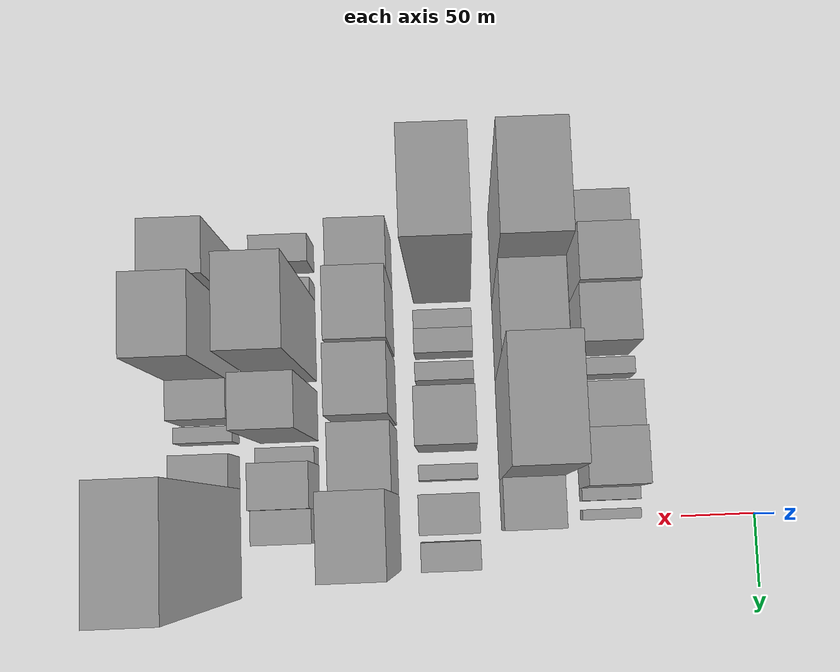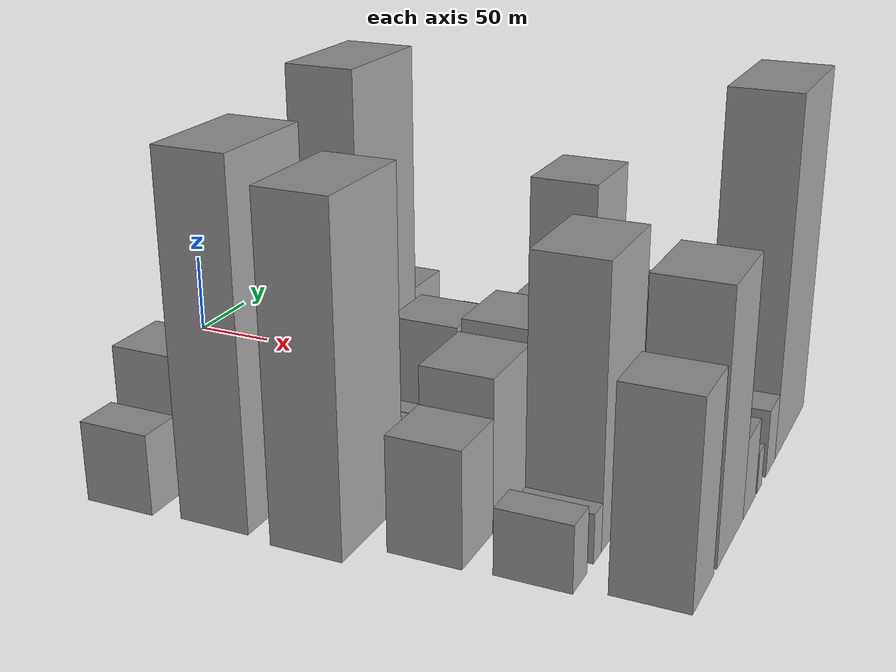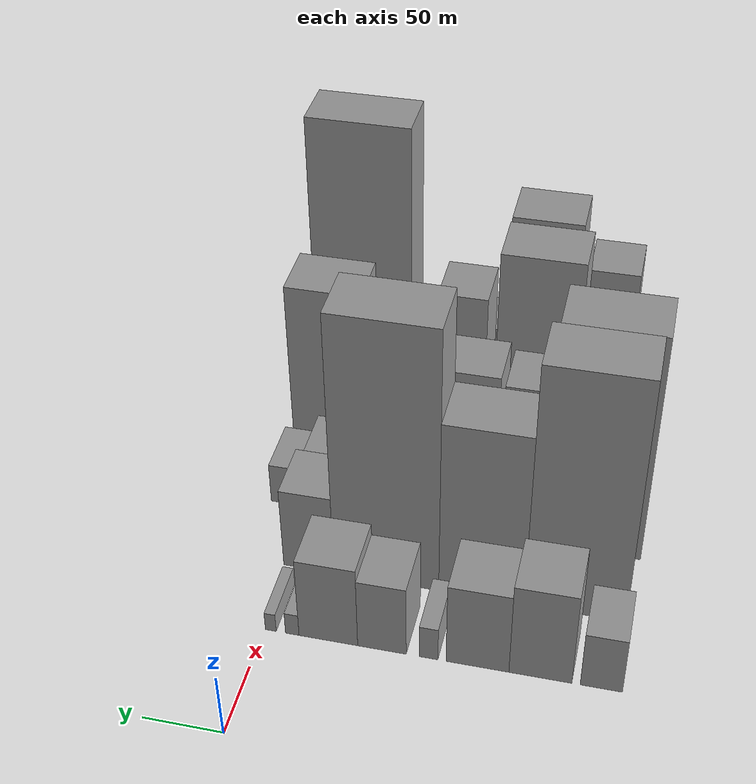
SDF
<sdf version="1.6">
 <world name="default">
  <model name="building_16">
   <static>1</static>
   <pose>100.0000 -209.2729 0 0.000000 0.000000 0.000000</pose>
   <link name="link">
    <pose>0 0 22.50 0 0 0</pose>
    <collision name="collision"><geometry><box><size>40.0000 25.2728 45.0000</size></box></geometry></collision>
    <visual name="visual">
     <cast_shadows>0</cast_shadows>
     <geometry><box><size>40.0000 25.2728 45.0000</size></box></geometry>
     <material>
      <script>
       <uri>model://grey_wall/materials/scripts</uri>
       <uri>model://grey_wall/materials/textures</uri>
       <name>vrc/grey_wall</name>
      </script>
     </material>
    </visual>
   </link>
  </model>
  <model name="building_17">
   <static>1</static>
   <pose>100.0000 -172.5499 0 0.000000 0.000000 0.000000</pose>
   <link name="link">
    <pose>0 0 37.50 0 0 0</pose>
    <collision name="collision"><geometry><box><size>40.0000 38.1732 75.0000</size></box></geometry></collision>
    <visual name="visual">
     <cast_shadows>0</cast_shadows>
     <geometry><box><size>40.0000 38.1732 75.0000</size></box></geometry>
     <material>
      <script>
       <uri>model://grey_wall/materials/scripts</uri>
       <uri>model://grey_wall/materials/textures</uri>
       <name>vrc/grey_wall</name>
      </script>
     </material>
    </visual>
   </link>
  </model>
  <model name="building_18">
   <static>1</static>
   <pose>100.0000 -134.1330 0 0.000000 0.000000 0.000000</pose>
   <link name="link">
    <pose>0 0 33.00 0 0 0</pose>
    <collision name="collision"><geometry><box><size>40.0000 38.6607 66.0000</size></box></geometry></collision>
    <visual name="visual">
     <cast_shadows>0</cast_shadows>
     <geometry><box><size>40.0000 38.6607 66.0000</size></box></geometry>
     <material>
      <script>
       <uri>model://grey_wall/materials/scripts</uri>
       <uri>model://grey_wall/materials/textures</uri>
       <name>vrc/grey_wall</name>
      </script>
     </material>
    </visual>
   </link>
  </model>
  <model name="building_19">
   <static>1</static>
   <pose>100.0000 -103.9196 0 0.000000 0.000000 0.000000</pose>
   <link name="link">
    <pose>0 0 13.50 0 0 0</pose>
    <collision name="collision"><geometry><box><size>40.0000 11.7662 27.0000</size></box></geometry></collision>
    <visual name="visual">
     <cast_shadows>0</cast_shadows>
     <geometry><box><size>40.0000 11.7662 27.0000</size></box></geometry>
     <material>
      <script>
       <uri>model://grey_wall/materials/scripts</uri>
       <uri>model://grey_wall/materials/textures</uri>
       <name>vrc/grey_wall</name>
      </script>
     </material>
    </visual>
   </link>
  </model>
  <model name="building_20">
   <static>1</static>
   <pose>100.0000 -74.7390 0 0.000000 0.000000 0.000000</pose>
   <link name="link">
    <pose>0 0 28.50 0 0 0</pose>
    <collision name="collision"><geometry><box><size>40.0000 30.5950 57.0000</size></box></geometry></collision>
    <visual name="visual">
     <cast_shadows>0</cast_shadows>
     <geometry><box><size>40.0000 30.5950 57.0000</size></box></geometry>
     <material>
      <script>
       <uri>model://grey_wall/materials/scripts</uri>
       <uri>model://grey_wall/materials/textures</uri>
       <name>vrc/grey_wall</name>
      </script>
     </material>
    </visual>
   </link>
  </model>
  <model name="building_21">
   <static>1</static>
   <pose>100.0000 -40.7443 0 0.000000 0.000000 0.000000</pose>
   <link name="link">
    <pose>0 0 33.00 0 0 0</pose>
    <collision name="collision"><geometry><box><size>40.0000 37.3942 66.0000</size></box></geometry></collision>
    <visual name="visual">
     <cast_shadows>0</cast_shadows>
     <geometry><box><size>40.0000 37.3942 66.0000</size></box></geometry>
     <material>
      <script>
       <uri>model://grey_wall/materials/scripts</uri>
       <uri>model://grey_wall/materials/textures</uri>
       <name>vrc/grey_wall</name>
      </script>
     </material>
    </visual>
   </link>
  </model>
  <model name="building_22">
   <static>1</static>
   <pose>100.0000 -17.7094 0 0.000000 0.000000 0.000000</pose>
   <link name="link">
    <pose>0 0 9.00 0 0 0</pose>
    <collision name="collision"><geometry><box><size>40.0000 8.6757 18.0000</size></box></geometry></collision>
    <visual name="visual">
     <cast_shadows>0</cast_shadows>
     <geometry><box><size>40.0000 8.6757 18.0000</size></box></geometry>
     <material>
      <script>
       <uri>model://grey_wall/materials/scripts</uri>
       <uri>model://grey_wall/materials/textures</uri>
       <name>vrc/grey_wall</name>
      </script>
     </material>
    </visual>
   </link>
  </model>
  <model name="building_23">
   <static>1</static>
   <pose>100.0000 -3.8777 0 0.000000 0.000000 0.000000</pose>
   <link name="link">
    <pose>0 0 7.50 0 0 0</pose>
    <collision name="collision"><geometry><box><size>40.0000 6.9877 15.0000</size></box></geometry></collision>
    <visual name="visual">
     <cast_shadows>0</cast_shadows>
     <geometry><box><size>40.0000 6.9877 15.0000</size></box></geometry>
     <material>
      <script>
       <uri>model://grey_wall/materials/scripts</uri>
       <uri>model://grey_wall/materials/textures</uri>
       <name>vrc/grey_wall</name>
      </script>
     </material>
    </visual>
   </link>
  </model>
  <model name="building_70">
   <static>1</static>
   <pose>155.0000 -186.0356 0 0.000000 0.000000 0.000000</pose>
   <link name="link">
    <pose>0 0 97.50 0 0 0</pose>
    <collision name="collision"><geometry><box><size>40.0000 64.4252 195.0000</size></box></geometry></collision>
    <visual name="visual">
     <cast_shadows>0</cast_shadows>
     <geometry><box><size>40.0000 64.4252 195.0000</size></box></geometry>
     <material>
      <script>
       <uri>model://grey_wall/materials/scripts</uri>
       <uri>model://grey_wall/materials/textures</uri>
       <name>vrc/grey_wall</name>
      </script>
     </material>
    </visual>
   </link>
  </model>
  <model name="building_71">
   <static>1</static>
   <pose>155.0000 -126.2887 0 0.000000 0.000000 0.000000</pose>
   <link name="link">
    <pose>0 0 70.50 0 0 0</pose>
    <collision name="collision"><geometry><box><size>40.0000 55.0686 141.0000</size></box></geometry></collision>
    <visual name="visual">
     <cast_shadows>0</cast_shadows>
     <geometry><box><size>40.0000 55.0686 141.0000</size></box></geometry>
     <material>
      <script>
       <uri>model://grey_wall/materials/scripts</uri>
       <uri>model://grey_wall/materials/textures</uri>
       <name>vrc/grey_wall</name>
      </script>
     </material>
    </visual>
   </link>
  </model>
  <model name="building_72">
   <static>1</static>
   <pose>155.0000 -64.1300 0 0.000000 0.000000 0.000000</pose>
   <link name="link">
    <pose>0 0 105.00 0 0 0</pose>
    <collision name="collision"><geometry><box><size>40.0000 69.2488 210.0000</size></box></geometry></collision>
    <visual name="visual">
     <cast_shadows>0</cast_shadows>
     <geometry><box><size>40.0000 69.2488 210.0000</size></box></geometry>
     <material>
      <script>
       <uri>model://grey_wall/materials/scripts</uri>
       <uri>model://grey_wall/materials/textures</uri>
       <name>vrc/grey_wall</name>
      </script>
     </material>
    </visual>
   </link>
  </model>
  <model name="building_73">
   <static>1</static>
   <pose>155.0000 -12.7014 0 0.000000 0.000000 0.000000</pose>
   <link name="link">
    <pose>0 0 33.00 0 0 0</pose>
    <collision name="collision"><geometry><box><size>40.0000 33.6084 66.0000</size></box></geometry></collision>
    <visual name="visual">
     <cast_shadows>0</cast_shadows>
     <geometry><box><size>40.0000 33.6084 66.0000</size></box></geometry>
     <material>
      <script>
       <uri>model://grey_wall/materials/scripts</uri>
       <uri>model://grey_wall/materials/textures</uri>
       <name>vrc/grey_wall</name>
      </script>
     </material>
    </visual>
   </link>
  </model>
  <model name="building_120">
   <static>1</static>
   <pose>210.0000 -189.6673 0 0.000000 0.000000 0.000000</pose>
   <link name="link">
    <pose>0 0 91.50 0 0 0</pose>
    <collision name="collision"><geometry><box><size>40.0000 64.3892 183.0000</size></box></geometry></collision>
    <visual name="visual">
     <cast_shadows>0</cast_shadows>
     <geometry><box><size>40.0000 64.3892 183.0000</size></box></geometry>
     <material>
      <script>
       <uri>model://grey_wall/materials/scripts</uri>
       <uri>model://grey_wall/materials/textures</uri>
       <name>vrc/grey_wall</name>
      </script>
     </material>
    </visual>
   </link>
  </model>
  <model name="building_121">
   <static>1</static>
   <pose>210.0000 -140.7694 0 0.000000 0.000000 0.000000</pose>
   <link name="link">
    <pose>0 0 13.50 0 0 0</pose>
    <collision name="collision"><geometry><box><size>40.0000 13.4068 27.0000</size></box></geometry></collision>
    <visual name="visual">
     <cast_shadows>0</cast_shadows>
     <geometry><box><size>40.0000 13.4068 27.0000</size></box></geometry>
     <material>
      <script>
       <uri>model://grey_wall/materials/scripts</uri>
       <uri>model://grey_wall/materials/textures</uri>
       <name>vrc/grey_wall</name>
      </script>
     </material>
    </visual>
   </link>
  </model>
  <model name="building_122">
   <static>1</static>
   <pose>210.0000 -125.6871 0 0.000000 0.000000 0.000000</pose>
   <link name="link">
    <pose>0 0 15.00 0 0 0</pose>
    <collision name="collision"><geometry><box><size>40.0000 16.7577 30.0000</size></box></geometry></collision>
    <visual name="visual">
     <cast_shadows>0</cast_shadows>
     <geometry><box><size>40.0000 16.7577 30.0000</size></box></geometry>
     <material>
      <script>
       <uri>model://grey_wall/materials/scripts</uri>
       <uri>model://grey_wall/materials/textures</uri>
       <name>vrc/grey_wall</name>
      </script>
     </material>
    </visual>
   </link>
  </model>
  <model name="building_123">
   <static>1</static>
   <pose>210.0000 -105.0170 0 0.000000 0.000000 0.000000</pose>
   <link name="link">
    <pose>0 0 13.50 0 0 0</pose>
    <collision name="collision"><geometry><box><size>40.0000 12.5826 27.0000</size></box></geometry></collision>
    <visual name="visual">
     <cast_shadows>0</cast_shadows>
     <geometry><box><size>40.0000 12.5826 27.0000</size></box></geometry>
     <material>
      <script>
       <uri>model://grey_wall/materials/scripts</uri>
       <uri>model://grey_wall/materials/textures</uri>
       <name>vrc/grey_wall</name>
      </script>
     </material>
    </visual>
   </link>
  </model>
  <model name="building_124">
   <static>1</static>
   <pose>210.0000 -70.7003 0 0.000000 0.000000 0.000000</pose>
   <link name="link">
    <pose>0 0 36.00 0 0 0</pose>
    <collision name="collision"><geometry><box><size>40.0000 38.0507 72.0000</size></box></geometry></collision>
    <visual name="visual">
     <cast_shadows>0</cast_shadows>
     <geometry><box><size>40.0000 38.0507 72.0000</size></box></geometry>
     <material>
      <script>
       <uri>model://grey_wall/materials/scripts</uri>
       <uri>model://grey_wall/materials/textures</uri>
       <name>vrc/grey_wall</name>
      </script>
     </material>
    </visual>
   </link>
  </model>
  <model name="building_125">
   <static>1</static>
   <pose>210.0000 -36.4760 0 0.000000 0.000000 0.000000</pose>
   <link name="link">
    <pose>0 0 12.00 0 0 0</pose>
    <collision name="collision"><geometry><box><size>40.0000 10.3979 24.0000</size></box></geometry></collision>
    <visual name="visual">
     <cast_shadows>0</cast_shadows>
     <geometry><box><size>40.0000 10.3979 24.0000</size></box></geometry>
     <material>
      <script>
       <uri>model://grey_wall/materials/scripts</uri>
       <uri>model://grey_wall/materials/textures</uri>
       <name>vrc/grey_wall</name>
      </script>
     </material>
    </visual>
   </link>
  </model>
  <model name="building_126">
   <static>1</static>
   <pose>210.0000 -8.0788 0 0.000000 0.000000 0.000000</pose>
   <link name="link">
    <pose>0 0 24.00 0 0 0</pose>
    <collision name="collision"><geometry><box><size>40.0000 26.3965 48.0000</size></box></geometry></collision>
    <visual name="visual">
     <cast_shadows>0</cast_shadows>
     <geometry><box><size>40.0000 26.3965 48.0000</size></box></geometry>
     <material>
      <script>
       <uri>model://grey_wall/materials/scripts</uri>
       <uri>model://grey_wall/materials/textures</uri>
       <name>vrc/grey_wall</name>
      </script>
     </material>
    </visual>
   </link>
  </model>
  <model name="building_127">
   <static>1</static>
   <pose>210.0000 19.7451 0 0.000000 0.000000 0.000000</pose>
   <link name="link">
    <pose>0 0 16.50 0 0 0</pose>
    <collision name="collision"><geometry><box><size>40.0000 19.2513 33.0000</size></box></geometry></collision>
    <visual name="visual">
     <cast_shadows>0</cast_shadows>
     <geometry><box><size>40.0000 19.2513 33.0000</size></box></geometry>
     <material>
      <script>
       <uri>model://grey_wall/materials/scripts</uri>
       <uri>model://grey_wall/materials/textures</uri>
       <name>vrc/grey_wall</name>
      </script>
     </material>
    </visual>
   </link>
  </model>
  <model name="building_174">
   <static>1</static>
   <pose>265.0000 -185.7360 0 0.000000 0.000000 0.000000</pose>
   <link name="link">
    <pose>0 0 31.50 0 0 0</pose>
    <collision name="collision"><geometry><box><size>40.0000 36.9029 63.0000</size></box></geometry></collision>
    <visual name="visual">
     <cast_shadows>0</cast_shadows>
     <geometry><box><size>40.0000 36.9029 63.0000</size></box></geometry>
     <material>
      <script>
       <uri>model://grey_wall/materials/scripts</uri>
       <uri>model://grey_wall/materials/textures</uri>
       <name>vrc/grey_wall</name>
      </script>
     </material>
    </visual>
   </link>
  </model>
  <model name="building_175">
   <static>1</static>
   <pose>265.0000 -143.5590 0 0.000000 0.000000 0.000000</pose>
   <link name="link">
    <pose>0 0 42.00 0 0 0</pose>
    <collision name="collision"><geometry><box><size>40.0000 47.4509 84.0000</size></box></geometry></collision>
    <visual name="visual">
     <cast_shadows>0</cast_shadows>
     <geometry><box><size>40.0000 47.4509 84.0000</size></box></geometry>
     <material>
      <script>
       <uri>model://grey_wall/materials/scripts</uri>
       <uri>model://grey_wall/materials/textures</uri>
       <name>vrc/grey_wall</name>
      </script>
     </material>
    </visual>
   </link>
  </model>
  <model name="building_176">
   <static>1</static>
   <pose>265.0000 -94.0019 0 0.000000 0.000000 0.000000</pose>
   <link name="link">
    <pose>0 0 45.00 0 0 0</pose>
    <collision name="collision"><geometry><box><size>40.0000 45.6634 90.0000</size></box></geometry></collision>
    <visual name="visual">
     <cast_shadows>0</cast_shadows>
     <geometry><box><size>40.0000 45.6634 90.0000</size></box></geometry>
     <material>
      <script>
       <uri>model://grey_wall/materials/scripts</uri>
       <uri>model://grey_wall/materials/textures</uri>
       <name>vrc/grey_wall</name>
      </script>
     </material>
    </visual>
   </link>
  </model>
  <model name="building_177">
   <static>1</static>
   <pose>265.0000 -45.6022 0 0.000000 0.000000 0.000000</pose>
   <link name="link">
    <pose>0 0 39.00 0 0 0</pose>
    <collision name="collision"><geometry><box><size>40.0000 45.1358 78.0000</size></box></geometry></collision>
    <visual name="visual">
     <cast_shadows>0</cast_shadows>
     <geometry><box><size>40.0000 45.1358 78.0000</size></box></geometry>
     <material>
      <script>
       <uri>model://grey_wall/materials/scripts</uri>
       <uri>model://grey_wall/materials/textures</uri>
       <name>vrc/grey_wall</name>
      </script>
     </material>
    </visual>
   </link>
  </model>
  <model name="building_178">
   <static>1</static>
   <pose>265.0000 2.9374 0 0.000000 0.000000 0.000000</pose>
   <link name="link">
    <pose>0 0 70.50 0 0 0</pose>
    <collision name="collision"><geometry><box><size>40.0000 51.9434 141.0000</size></box></geometry></collision>
    <visual name="visual">
     <cast_shadows>0</cast_shadows>
     <geometry><box><size>40.0000 51.9434 141.0000</size></box></geometry>
     <material>
      <script>
       <uri>model://grey_wall/materials/scripts</uri>
       <uri>model://grey_wall/materials/textures</uri>
       <name>vrc/grey_wall</name>
      </script>
     </material>
    </visual>
   </link>
  </model>
  <model name="building_227">
   <static>1</static>
   <pose>320.0000 -192.3097 0 0.000000 0.000000 0.000000</pose>
   <link name="link">
    <pose>0 0 18.00 0 0 0</pose>
    <collision name="collision"><geometry><box><size>40.0000 19.4289 36.0000</size></box></geometry></collision>
    <visual name="visual">
     <cast_shadows>0</cast_shadows>
     <geometry><box><size>40.0000 19.4289 36.0000</size></box></geometry>
     <material>
      <script>
       <uri>model://grey_wall/materials/scripts</uri>
       <uri>model://grey_wall/materials/textures</uri>
       <name>vrc/grey_wall</name>
      </script>
     </material>
    </visual>
   </link>
  </model>
  <model name="building_228">
   <static>1</static>
   <pose>320.0000 -167.9087 0 0.000000 0.000000 0.000000</pose>
   <link name="link">
    <pose>0 0 13.50 0 0 0</pose>
    <collision name="collision"><geometry><box><size>40.0000 11.3732 27.0000</size></box></geometry></collision>
    <visual name="visual">
     <cast_shadows>0</cast_shadows>
     <geometry><box><size>40.0000 11.3732 27.0000</size></box></geometry>
     <material>
      <script>
       <uri>model://grey_wall/materials/scripts</uri>
       <uri>model://grey_wall/materials/textures</uri>
       <name>vrc/grey_wall</name>
      </script>
     </material>
    </visual>
   </link>
  </model>
  <model name="building_229">
   <static>1</static>
   <pose>320.0000 -133.3621 0 0.000000 0.000000 0.000000</pose>
   <link name="link">
    <pose>0 0 75.00 0 0 0</pose>
    <collision name="collision"><geometry><box><size>40.0000 57.7199 150.0000</size></box></geometry></collision>
    <visual name="visual">
     <cast_shadows>0</cast_shadows>
     <geometry><box><size>40.0000 57.7199 150.0000</size></box></geometry>
     <material>
      <script>
       <uri>model://grey_wall/materials/scripts</uri>
       <uri>model://grey_wall/materials/textures</uri>
       <name>vrc/grey_wall</name>
      </script>
     </material>
    </visual>
   </link>
  </model>
  <model name="building_230">
   <static>1</static>
   <pose>320.0000 -80.0571 0 0.000000 0.000000 0.000000</pose>
   <link name="link">
    <pose>0 0 55.50 0 0 0</pose>
    <collision name="collision"><geometry><box><size>40.0000 34.8900 111.0000</size></box></geometry></collision>
    <visual name="visual">
     <cast_shadows>0</cast_shadows>
     <geometry><box><size>40.0000 34.8900 111.0000</size></box></geometry>
     <material>
      <script>
       <uri>model://grey_wall/materials/scripts</uri>
       <uri>model://grey_wall/materials/textures</uri>
       <name>vrc/grey_wall</name>
      </script>
     </material>
    </visual>
   </link>
  </model>
  <model name="building_231">
   <static>1</static>
   <pose>320.0000 -51.7716 0 0.000000 0.000000 0.000000</pose>
   <link name="link">
    <pose>0 0 12.00 0 0 0</pose>
    <collision name="collision"><geometry><box><size>40.0000 11.6810 24.0000</size></box></geometry></collision>
    <visual name="visual">
     <cast_shadows>0</cast_shadows>
     <geometry><box><size>40.0000 11.6810 24.0000</size></box></geometry>
     <material>
      <script>
       <uri>model://grey_wall/materials/scripts</uri>
       <uri>model://grey_wall/materials/textures</uri>
       <name>vrc/grey_wall</name>
      </script>
     </material>
    </visual>
   </link>
  </model>
  <model name="building_232">
   <static>1</static>
   <pose>320.0000 -30.6308 0 0.000000 0.000000 0.000000</pose>
   <link name="link">
    <pose>0 0 27.00 0 0 0</pose>
    <collision name="collision"><geometry><box><size>40.0000 30.6006 54.0000</size></box></geometry></collision>
    <visual name="visual">
     <cast_shadows>0</cast_shadows>
     <geometry><box><size>40.0000 30.6006 54.0000</size></box></geometry>
     <material>
      <script>
       <uri>model://grey_wall/materials/scripts</uri>
       <uri>model://grey_wall/materials/textures</uri>
       <name>vrc/grey_wall</name>
      </script>
     </material>
    </visual>
   </link>
  </model>
  <model name="building_233">
   <static>1</static>
   <pose>320.0000 -4.0093 0 0.000000 0.000000 0.000000</pose>
   <link name="link">
    <pose>0 0 22.50 0 0 0</pose>
    <collision name="collision"><geometry><box><size>40.0000 22.6423 45.0000</size></box></geometry></collision>
    <visual name="visual">
     <cast_shadows>0</cast_shadows>
     <geometry><box><size>40.0000 22.6423 45.0000</size></box></geometry>
     <material>
      <script>
       <uri>model://grey_wall/materials/scripts</uri>
       <uri>model://grey_wall/materials/textures</uri>
       <name>vrc/grey_wall</name>
      </script>
     </material>
    </visual>
   </link>
  </model>
  <model name="building_273">
   <static>1</static>
   <pose>375.0000 -177.8867 0 0.000000 0.000000 0.000000</pose>
   <link name="link">
    <pose>0 0 54.00 0 0 0</pose>
    <collision name="collision"><geometry><box><size>40.0000 35.8448 108.0000</size></box></geometry></collision>
    <visual name="visual">
     <cast_shadows>0</cast_shadows>
     <geometry><box><size>40.0000 35.8448 108.0000</size></box></geometry>
     <material>
      <script>
       <uri>model://grey_wall/materials/scripts</uri>
       <uri>model://grey_wall/materials/textures</uri>
       <name>vrc/grey_wall</name>
      </script>
     </material>
    </visual>
   </link>
  </model>
  <model name="building_274">
   <static>1</static>
   <pose>375.0000 -128.7007 0 0.000000 0.000000 0.000000</pose>
   <link name="link">
    <pose>0 0 72.00 0 0 0</pose>
    <collision name="collision"><geometry><box><size>40.0000 50.5272 144.0000</size></box></geometry></collision>
    <visual name="visual">
     <cast_shadows>0</cast_shadows>
     <geometry><box><size>40.0000 50.5272 144.0000</size></box></geometry>
     <material>
      <script>
       <uri>model://grey_wall/materials/scripts</uri>
       <uri>model://grey_wall/materials/textures</uri>
       <name>vrc/grey_wall</name>
      </script>
     </material>
    </visual>
   </link>
  </model>
  <model name="building_275">
   <static>1</static>
   <pose>375.0000 -90.0775 0 0.000000 0.000000 0.000000</pose>
   <link name="link">
    <pose>0 0 22.50 0 0 0</pose>
    <collision name="collision"><geometry><box><size>40.0000 26.7192 45.0000</size></box></geometry></collision>
    <visual name="visual">
     <cast_shadows>0</cast_shadows>
     <geometry><box><size>40.0000 26.7192 45.0000</size></box></geometry>
     <material>
      <script>
       <uri>model://grey_wall/materials/scripts</uri>
       <uri>model://grey_wall/materials/textures</uri>
       <name>vrc/grey_wall</name>
      </script>
     </material>
    </visual>
   </link>
  </model>
  <model name="building_276">
   <static>1</static>
   <pose>375.0000 -68.3093 0 0.000000 0.000000 0.000000</pose>
   <link name="link">
    <pose>0 0 12.00 0 0 0</pose>
    <collision name="collision"><geometry><box><size>40.0000 10.8172 24.0000</size></box></geometry></collision>
    <visual name="visual">
     <cast_shadows>0</cast_shadows>
     <geometry><box><size>40.0000 10.8172 24.0000</size></box></geometry>
     <material>
      <script>
       <uri>model://grey_wall/materials/scripts</uri>
       <uri>model://grey_wall/materials/textures</uri>
       <name>vrc/grey_wall</name>
      </script>
     </material>
    </visual>
   </link>
  </model>
  <model name="building_277">
   <static>1</static>
   <pose>375.0000 -42.8008 0 0.000000 0.000000 0.000000</pose>
   <link name="link">
    <pose>0 0 19.50 0 0 0</pose>
    <collision name="collision"><geometry><box><size>40.0000 22.1997 39.0000</size></box></geometry></collision>
    <visual name="visual">
     <cast_shadows>0</cast_shadows>
     <geometry><box><size>40.0000 22.1997 39.0000</size></box></geometry>
     <material>
      <script>
       <uri>model://grey_wall/materials/scripts</uri>
       <uri>model://grey_wall/materials/textures</uri>
       <name>vrc/grey_wall</name>
      </script>
     </material>
    </visual>
   </link>
  </model>
  <model name="building_278">
   <static>1</static>
   <pose>375.0000 5.8303 0 0.000000 0.000000 0.000000</pose>
   <link name="link">
    <pose>0 0 102.00 0 0 0</pose>
    <collision name="collision"><geometry><box><size>40.0000 75.0626 204.0000</size></box></geometry></collision>
    <visual name="visual">
     <cast_shadows>0</cast_shadows>
     <geometry><box><size>40.0000 75.0626 204.0000</size></box></geometry>
     <material>
      <script>
       <uri>model://grey_wall/materials/scripts</uri>
       <uri>model://grey_wall/materials/textures</uri>
       <name>vrc/grey_wall</name>
      </script>
     </material>
    </visual>
   </link>
  </model>
 </world>
</sdf>
